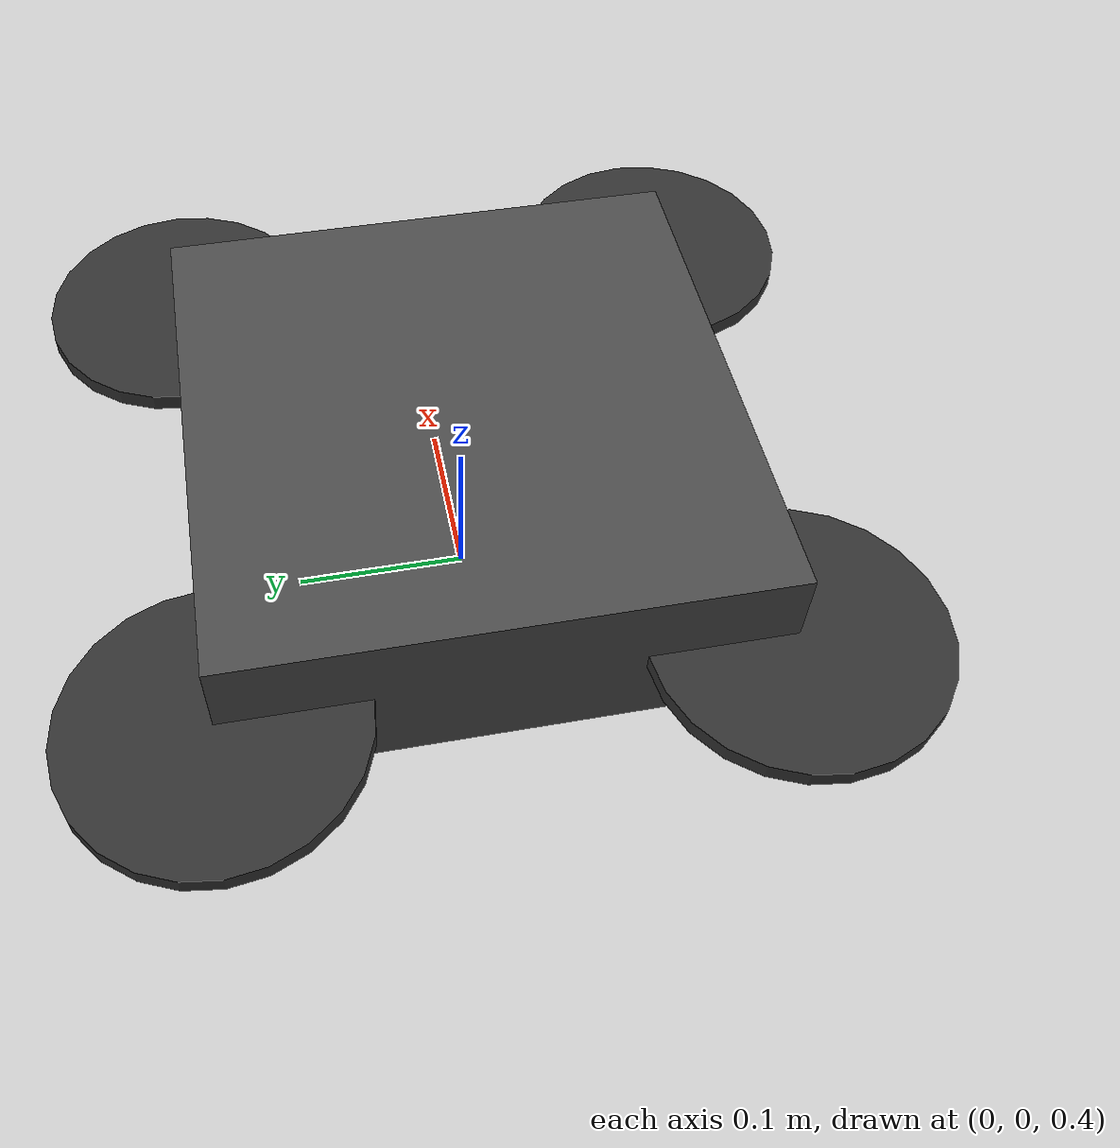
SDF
<?xml version="1.0" ?>
<sdf version="1.6">
  <model name="bodyguard_drone">
    <!-- Base link (drone body) -->
    <link name="base_link">
      <pose>0 0 0.5 0 0 0</pose>
      <inertial>
        <mass>1.5</mass>
        <inertia>
          <ixx>0.03</ixx>
          <iyy>0.03</iyy>
          <izz>0.06</izz>
        </inertia>
      </inertial>

      <collision name="collision">
        <geometry>
          <box>
            <size>0.3 0.3 0.1</size>
          </box>
        </geometry>
      </collision>

      <visual name="visual">
        <geometry>
          <box>
            <size>0.3 0.3 0.1</size>
          </box>
        </geometry>
        <material>
          <ambient>0.2 0.2 0.2 1</ambient>
          <diffuse>0.3 0.3 0.3 1</diffuse>
        </material>
      </visual>

      <!-- Camera sensor -->
      <sensor name="camera" type="camera">
        <pose>0.15 0 0 0 0.3 0</pose>
        <camera>
          <horizontal_fov>1.047</horizontal_fov>
          <image>
            <width>640</width>
            <height>480</height>
          </image>
          <clip>
            <near>0.1</near>
            <far>100</far>
          </clip>
        </camera>
        <always_on>1</always_on>
        <update_rate>30</update_rate>
        <visualize>true</visualize>
        <plugin name="camera_controller" filename="libgazebo_ros_camera.so">
          <ros>
            <namespace>/drone</namespace>
            <remapping>image_raw:=camera/image_raw</remapping>
            <remapping>camera_info:=camera/camera_info</remapping>
          </ros>
          <camera_name>camera</camera_name>
          <frame_name>camera_link</frame_name>
        </plugin>
      </sensor>

      <!-- IMU sensor -->
      <sensor name="imu" type="imu">
        <always_on>true</always_on>
        <update_rate>100</update_rate>
        <imu>
          <angular_velocity>
            <x>
              <noise type="gaussian">
                <mean>0</mean>
                <stddev>0.009</stddev>
              </noise>
            </x>
            <y>
              <noise type="gaussian">
                <mean>0</mean>
                <stddev>0.009</stddev>
              </noise>
            </y>
            <z>
              <noise type="gaussian">
                <mean>0</mean>
                <stddev>0.009</stddev>
              </noise>
            </z>
          </angular_velocity>
          <linear_acceleration>
            <x>
              <noise type="gaussian">
                <mean>0</mean>
                <stddev>0.017</stddev>
              </noise>
            </x>
            <y>
              <noise type="gaussian">
                <mean>0</mean>
                <stddev>0.017</stddev>
              </noise>
            </y>
            <z>
              <noise type="gaussian">
                <mean>0</mean>
                <stddev>0.017</stddev>
              </noise>
            </z>
          </linear_acceleration>
        </imu>
        <plugin name="imu_plugin" filename="libgazebo_ros_imu_sensor.so">
          <ros>
            <namespace>/drone</namespace>
            <remapping>~/out:=imu</remapping>
          </ros>
          <frame_name>base_link</frame_name>
        </plugin>
      </sensor>
    </link>

    <!-- Rotor arm 1 (front right) -->
    <link name="rotor_1">
      <pose>0.15 -0.15 0.5 0 0 0</pose>
      <inertial>
        <mass>0.05</mass>
        <inertia>
          <ixx>0.0001</ixx>
          <iyy>0.0001</iyy>
          <izz>0.0002</izz>
        </inertia>
      </inertial>
      <collision name="collision">
        <geometry>
          <cylinder>
            <radius>0.08</radius>
            <length>0.01</length>
          </cylinder>
        </geometry>
      </collision>
      <visual name="visual">
        <geometry>
          <cylinder>
            <radius>0.08</radius>
            <length>0.01</length>
          </cylinder>
        </geometry>
        <material>
          <ambient>0.1 0.1 0.1 1</ambient>
          <diffuse>0.2 0.2 0.2 1</diffuse>
        </material>
      </visual>
    </link>

    <!-- Rotor arm 2 (rear right) -->
    <link name="rotor_2">
      <pose>-0.15 -0.15 0.5 0 0 0</pose>
      <inertial>
        <mass>0.05</mass>
        <inertia>
          <ixx>0.0001</ixx>
          <iyy>0.0001</iyy>
          <izz>0.0002</izz>
        </inertia>
      </inertial>
      <collision name="collision">
        <geometry>
          <cylinder>
            <radius>0.08</radius>
            <length>0.01</length>
          </cylinder>
        </geometry>
      </collision>
      <visual name="visual">
        <geometry>
          <cylinder>
            <radius>0.08</radius>
            <length>0.01</length>
          </cylinder>
        </geometry>
        <material>
          <ambient>0.1 0.1 0.1 1</ambient>
          <diffuse>0.2 0.2 0.2 1</diffuse>
        </material>
      </visual>
    </link>

    <!-- Rotor arm 3 (rear left) -->
    <link name="rotor_3">
      <pose>-0.15 0.15 0.5 0 0 0</pose>
      <inertial>
        <mass>0.05</mass>
        <inertia>
          <ixx>0.0001</ixx>
          <iyy>0.0001</iyy>
          <izz>0.0002</izz>
        </inertia>
      </inertial>
      <collision name="collision">
        <geometry>
          <cylinder>
            <radius>0.08</radius>
            <length>0.01</length>
          </cylinder>
        </geometry>
      </collision>
      <visual name="visual">
        <geometry>
          <cylinder>
            <radius>0.08</radius>
            <length>0.01</length>
          </cylinder>
        </geometry>
        <material>
          <ambient>0.1 0.1 0.1 1</ambient>
          <diffuse>0.2 0.2 0.2 1</diffuse>
        </material>
      </visual>
    </link>

    <!-- Rotor arm 4 (front left) -->
    <link name="rotor_4">
      <pose>0.15 0.15 0.5 0 0 0</pose>
      <inertial>
        <mass>0.05</mass>
        <inertia>
          <ixx>0.0001</ixx>
          <iyy>0.0001</iyy>
          <izz>0.0002</izz>
        </inertia>
      </inertial>
      <collision name="collision">
        <geometry>
          <cylinder>
            <radius>0.08</radius>
            <length>0.01</length>
          </cylinder>
        </geometry>
      </collision>
      <visual name="visual">
        <geometry>
          <cylinder>
            <radius>0.08</radius>
            <length>0.01</length>
          </cylinder>
        </geometry>
        <material>
          <ambient>0.1 0.1 0.1 1</ambient>
          <diffuse>0.2 0.2 0.2 1</diffuse>
        </material>
      </visual>
    </link>

    <!-- Joints connecting rotors to base -->
    <joint name="rotor_1_joint" type="revolute">
      <parent>base_link</parent>
      <child>rotor_1</child>
      <axis>
        <xyz>0 0 1</xyz>
        <limit>
          <lower>-1e16</lower>
          <upper>1e16</upper>
        </limit>
      </axis>
    </joint>

    <joint name="rotor_2_joint" type="revolute">
      <parent>base_link</parent>
      <child>rotor_2</child>
      <axis>
        <xyz>0 0 1</xyz>
        <limit>
          <lower>-1e16</lower>
          <upper>1e16</upper>
        </limit>
      </axis>
    </joint>

    <joint name="rotor_3_joint" type="revolute">
      <parent>base_link</parent>
      <child>rotor_3</child>
      <axis>
        <xyz>0 0 1</xyz>
        <limit>
          <lower>-1e16</lower>
          <upper>1e16</upper>
        </limit>
      </axis>
    </joint>

    <joint name="rotor_4_joint" type="revolute">
      <parent>base_link</parent>
      <child>rotor_4</child>
      <axis>
        <xyz>0 0 1</xyz>
        <limit>
          <lower>-1e16</lower>
          <upper>1e16</upper>
        </limit>
      </axis>
    </joint>

    <!-- Drone control plugin -->
    <plugin name="drone_control" filename="libgazebo_ros_planar_move.so">
      <ros>
        <namespace>/drone</namespace>
        <remapping>cmd_vel:=cmd_vel</remapping>
        <remapping>odom:=odom</remapping>
      </ros>
      <update_rate>100</update_rate>
      <publish_rate>10</publish_rate>
      <publish_odom>true</publish_odom>
      <publish_odom_tf>true</publish_odom_tf>
      <odometry_frame>odom</odometry_frame>
      <robot_base_frame>base_link</robot_base_frame>
    </plugin>

  </model>
</sdf>
